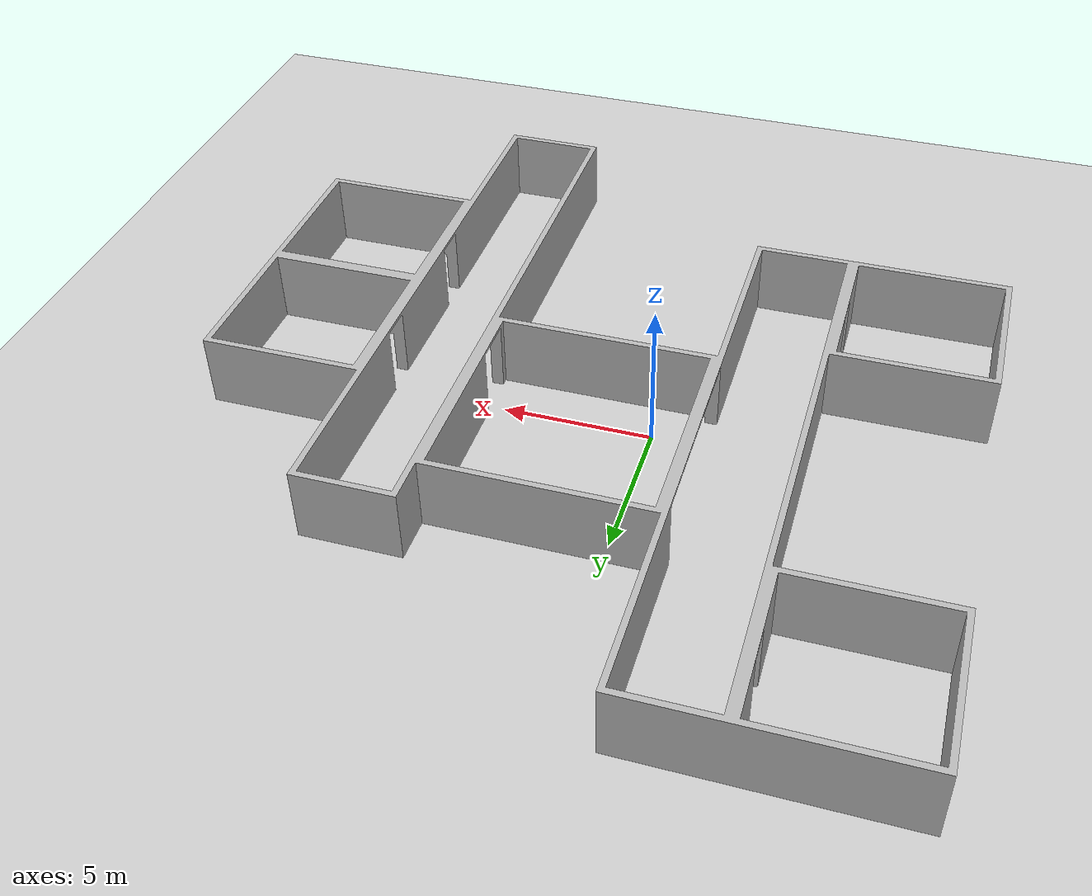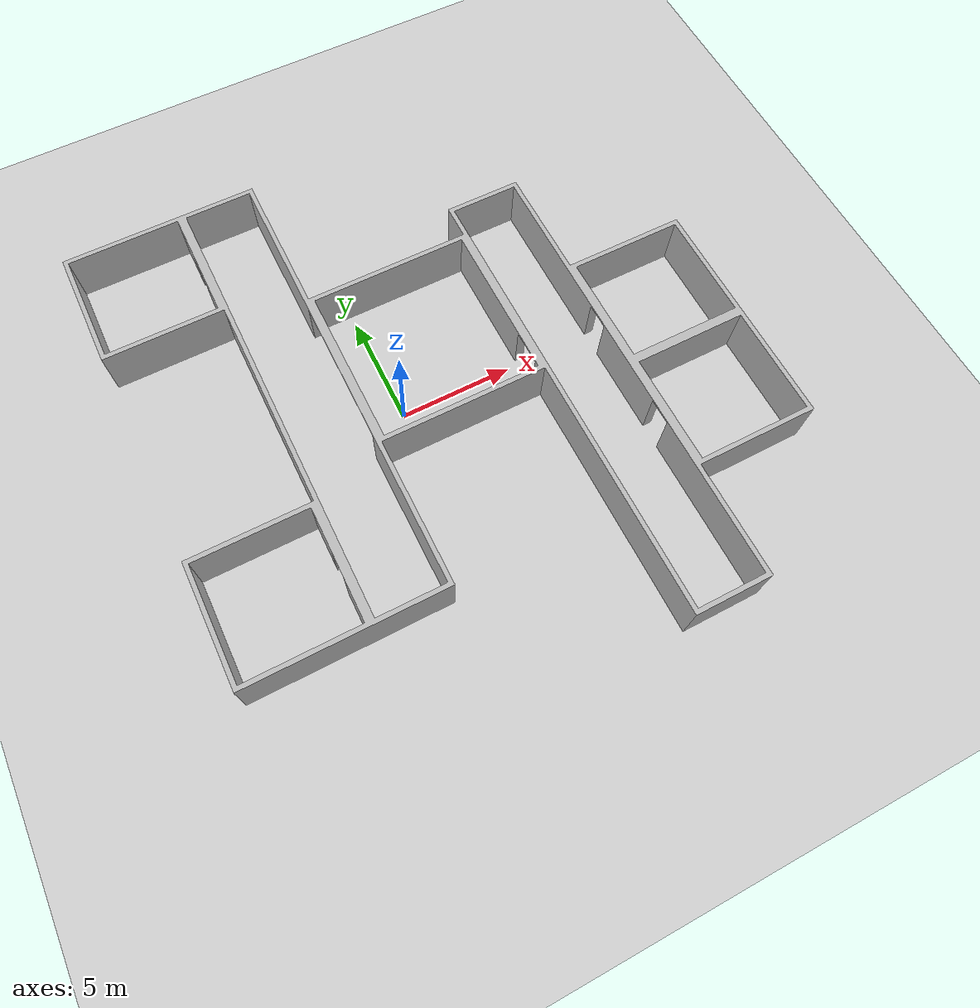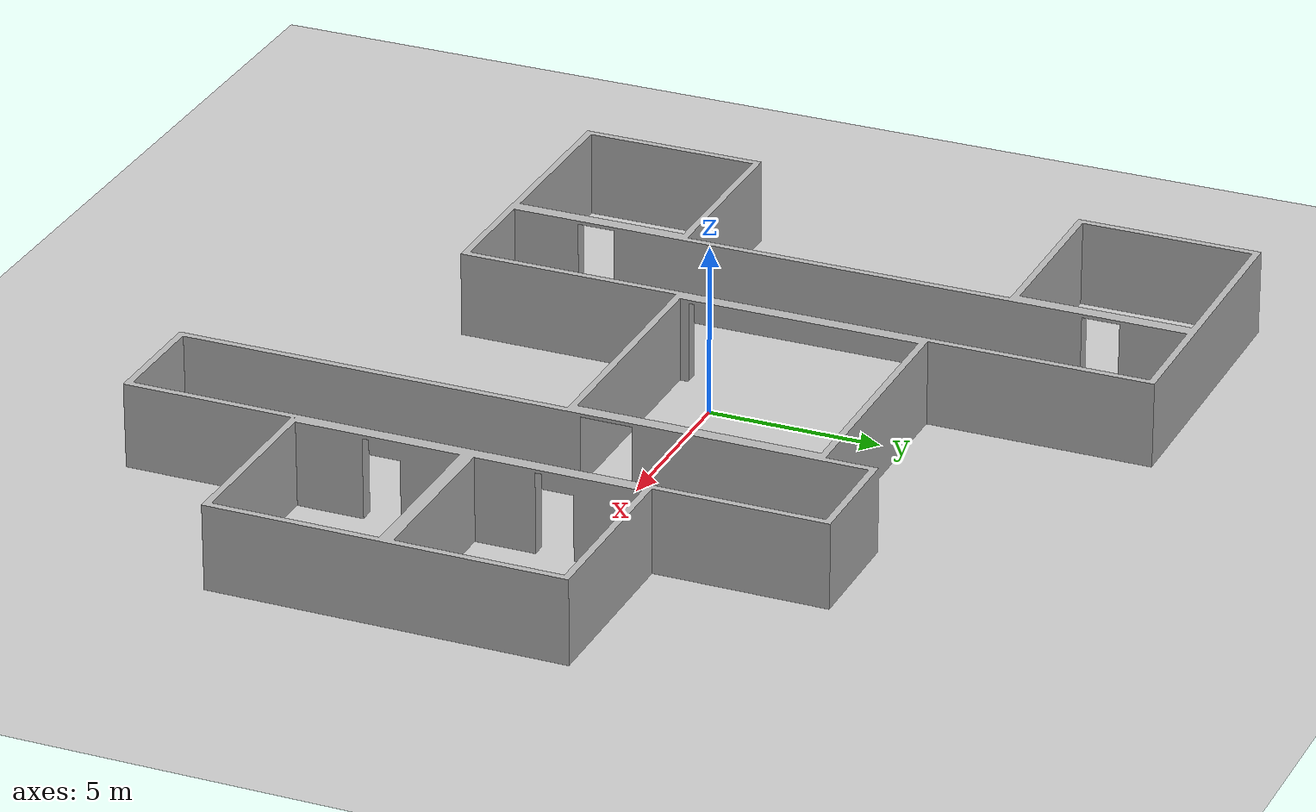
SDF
<?xml version='1.0' encoding='utf-8'?>
<sdf version="1.6">
  <world name="world">
    <gravity>0 0 -9.8</gravity>
    <physics default="0" name="default_physics" type="ode">
      <max_step_size>0.001</max_step_size>
      <real_time_factor>1</real_time_factor>
      <real_time_update_rate>1000</real_time_update_rate>
    </physics>
    <scene>
      <ambient>0.6 0.6 0.6 1</ambient>
      <background>0.4 0.4 0.4 1</background>
      <shadows>false</shadows>
    </scene>
    <include>
      <uri>model://sun</uri>
    </include>
    <include>
      <uri>model://ground_plane</uri>
      <pose>0 0 -0.1 0 -0 0</pose>
    </include>
    <model name="office_two">
      <include>
        <uri>model://office_two</uri>
        <static>true</static>
        <pose>-0.0 0.0 0.0 0.0 0.0 0.0</pose>
      </include>
    </model>
  </world>
</sdf>

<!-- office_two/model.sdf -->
<sdf version="1.6">
  <model name="office_two">
    <link name="link">
      <visual name="visual">
	    <geometry>
          <mesh>
            <uri>model://office_two/meshes/office_two.stl</uri>
          </mesh>
        </geometry>
      </visual>
      <collision name="collision">
        <geometry>
          <mesh>
            <uri>model://office_two/meshes/office_two.stl</uri>
          </mesh>
        </geometry>
      </collision>
</link>
  <static>1</static>
  </model>
</sdf>
